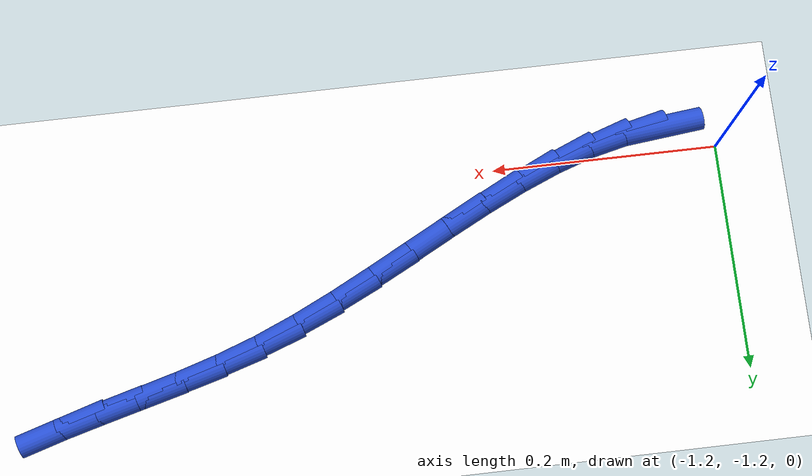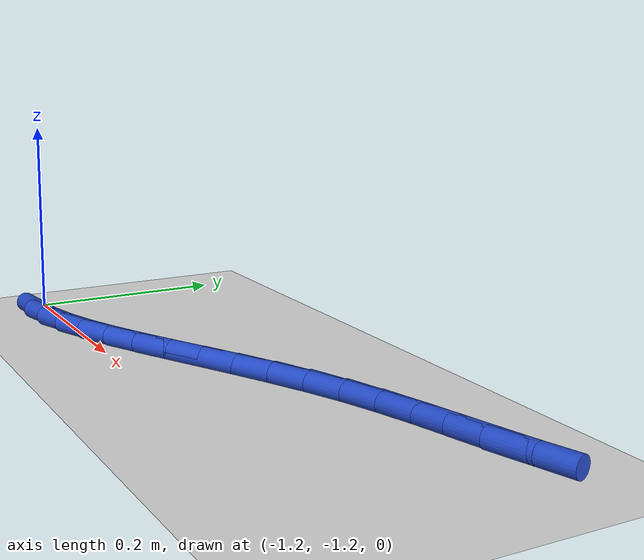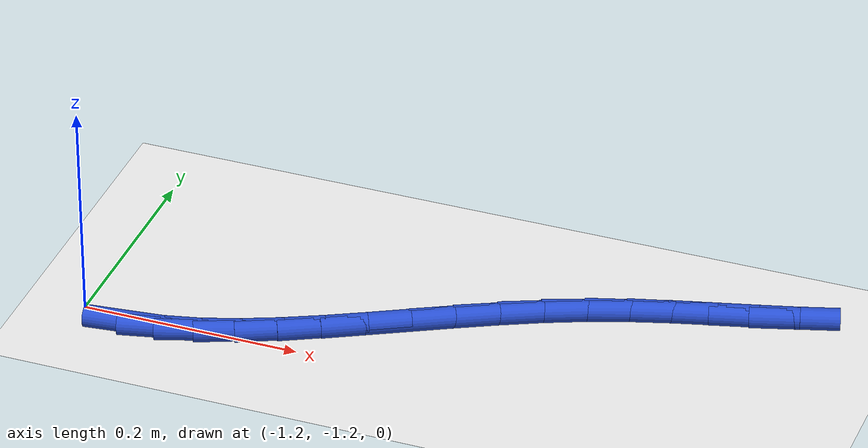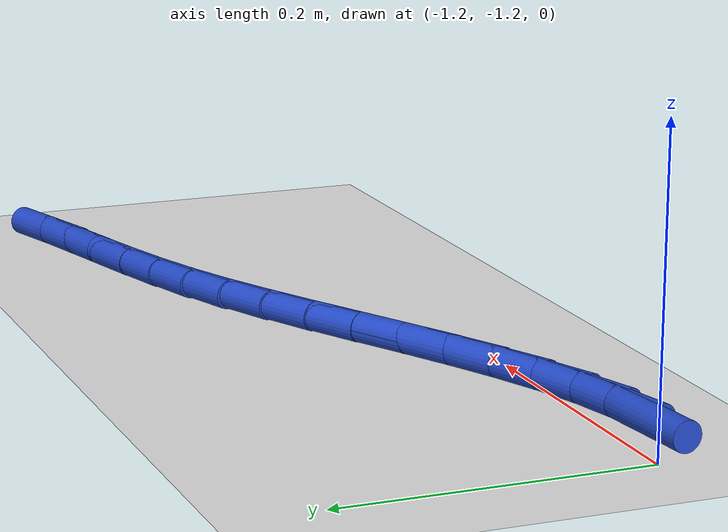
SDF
<sdf version="1.6">
 <world name="default">
  <model name="ground_plane">
   <static>1</static>
   <link name="link">
    <collision name="collision">
     <geometry><plane><normal>0 0 1</normal><size>100 100</size></plane></geometry>
     <surface><friction><ode><mu>100</mu><mu2>50</mu2></ode></friction></surface>
    </collision>
    <visual name="visual">
     <cast_shadows>0</cast_shadows>
     <geometry><plane><normal>0 0 1</normal><size>100 100</size></plane></geometry>
     <material>
      <script><uri>file://media/materials/scripts/gazebo.material</uri><name>Gazebo/WhiteGlow</name></script>
     </material>
    </visual>
   </link>
  </model>
  <model name="line">
   <link name="link_149">
    <pose>-1.1493687941139912 -1.2203137483968531 0.01 0 1.57 0.10786104663107009</pose>
    <collision name="collision">
     <geometry><cylinder><radius>0.01</radius><length>0.08</length></cylinder></geometry>
    </collision>
    <visual name="visual">
     <material>
      <script><name>Gazebo/Blue</name><uri>file://media/materials/scripts/gazebo.material</uri></script>
     </material>
     <geometry><cylinder><radius>0.01</radius><length>0.08</length></cylinder></geometry>
    </visual>
   </link>
   <link name="link_150">
    <pose>-1.1183673477435403 -1.216956871863096 0.01 0 1.57 0.23090353946557785</pose>
    <collision name="collision">
     <geometry><cylinder><radius>0.01</radius><length>0.08</length></cylinder></geometry>
    </collision>
    <visual name="visual">
     <material>
      <script><name>Gazebo/Blue</name><uri>file://media/materials/scripts/gazebo.material</uri></script>
     </material>
     <geometry><cylinder><radius>0.01</radius><length>0.08</length></cylinder></geometry>
    </visual>
   </link>
   <link name="link_151">
    <pose>-1.0866420552244123 -1.2094983622333522 0.01 0 1.57 0.324852312391499</pose>
    <collision name="collision">
     <geometry><cylinder><radius>0.01</radius><length>0.08</length></cylinder></geometry>
    </collision>
    <visual name="visual">
     <material>
      <script><name>Gazebo/Blue</name><uri>file://media/materials/scripts/gazebo.material</uri></script>
     </material>
     <geometry><cylinder><radius>0.01</radius><length>0.08</length></cylinder></geometry>
    </visual>
   </link>
   <link name="link_152">
    <pose>-1.054256611363853 -1.198591485281181 0.01 0 1.57 0.39374488359284954</pose>
    <collision name="collision">
     <geometry><cylinder><radius>0.01</radius><length>0.08</length></cylinder></geometry>
    </collision>
    <visual name="visual">
     <material>
      <script><name>Gazebo/Blue</name><uri>file://media/materials/scripts/gazebo.material</uri></script>
     </material>
     <geometry><cylinder><radius>0.01</radius><length>0.08</length></cylinder></geometry>
    </visual>
   </link>
   <link name="link_153">
    <pose>-1.021274710969107 -1.1848895067801426 0.01 0 1.57 0.4416050305662638</pose>
    <collision name="collision">
     <geometry><cylinder><radius>0.01</radius><length>0.08</length></cylinder></geometry>
    </collision>
    <visual name="visual">
     <material>
      <script><name>Gazebo/Blue</name><uri>file://media/materials/scripts/gazebo.material</uri></script>
     </material>
     <geometry><cylinder><radius>0.01</radius><length>0.08</length></cylinder></geometry>
    </visual>
   </link>
   <link name="link_154">
    <pose>-0.9877600488474191 -1.1690456925037964 0.01 0 1.57 0.4716315046972878</pose>
    <collision name="collision">
     <geometry><cylinder><radius>0.01</radius><length>0.08</length></cylinder></geometry>
    </collision>
    <visual name="visual">
     <material>
      <script><name>Gazebo/Blue</name><uri>file://media/materials/scripts/gazebo.material</uri></script>
     </material>
     <geometry><cylinder><radius>0.01</radius><length>0.08</length></cylinder></geometry>
    </visual>
   </link>
   <link name="link_155">
    <pose>-0.953776319806035 -1.151713308225702 0.01 0 1.57 0.4860287802735315</pose>
    <collision name="collision">
     <geometry><cylinder><radius>0.01</radius><length>0.08</length></cylinder></geometry>
    </collision>
    <visual name="visual">
     <material>
      <script><name>Gazebo/Blue</name><uri>file://media/materials/scripts/gazebo.material</uri></script>
     </material>
     <geometry><cylinder><radius>0.01</radius><length>0.08</length></cylinder></geometry>
    </visual>
   </link>
   <link name="link_156">
    <pose>-0.9193872186521992 -1.1335456197194196 0.01 0 1.57 0.4860632444115116</pose>
    <collision name="collision">
     <geometry><cylinder><radius>0.01</radius><length>0.08</length></cylinder></geometry>
    </collision>
    <visual name="visual">
     <material>
      <script><name>Gazebo/Blue</name><uri>file://media/materials/scripts/gazebo.material</uri></script>
     </material>
     <geometry><cylinder><radius>0.01</radius><length>0.08</length></cylinder></geometry>
    </visual>
   </link>
   <link name="link_157">
    <pose>-0.8846564401931569 -1.1151958927585082 0.01 0 1.57 0.4721601700957563</pose>
    <collision name="collision">
     <geometry><cylinder><radius>0.01</radius><length>0.08</length></cylinder></geometry>
    </collision>
    <visual name="visual">
     <material>
      <script><name>Gazebo/Blue</name><uri>file://media/materials/scripts/gazebo.material</uri></script>
     </material>
     <geometry><cylinder><radius>0.01</radius><length>0.08</length></cylinder></geometry>
    </visual>
   </link>
   <link name="link_158">
    <pose>-0.8496476792361533 -1.0973173931165277 0.01 0 1.57 0.44398232896027273</pose>
    <collision name="collision">
     <geometry><cylinder><radius>0.01</radius><length>0.08</length></cylinder></geometry>
    </collision>
    <visual name="visual">
     <material>
      <script><name>Gazebo/Blue</name><uri>file://media/materials/scripts/gazebo.material</uri></script>
     </material>
     <geometry><cylinder><radius>0.01</radius><length>0.08</length></cylinder></geometry>
    </visual>
   </link>
   <link name="link_159">
    <pose>-0.8144246305884338 -1.0805633865670388 0.01 0 1.57 0.4004918277338724</pose>
    <collision name="collision">
     <geometry><cylinder><radius>0.01</radius><length>0.08</length></cylinder></geometry>
    </collision>
    <visual name="visual">
     <material>
      <script><name>Gazebo/Blue</name><uri>file://media/materials/scripts/gazebo.material</uri></script>
     </material>
     <geometry><cylinder><radius>0.01</radius><length>0.08</length></cylinder></geometry>
    </visual>
   </link>
   <link name="link_160">
    <pose>-0.7790509890572428 -1.0655871388836002 0.01 0 1.57 0.3445160551321074</pose>
    <collision name="collision">
     <geometry><cylinder><radius>0.01</radius><length>0.08</length></cylinder></geometry>
    </collision>
    <visual name="visual">
     <material>
      <script><name>Gazebo/Blue</name><uri>file://media/materials/scripts/gazebo.material</uri></script>
     </material>
     <geometry><cylinder><radius>0.01</radius><length>0.08</length></cylinder></geometry>
    </visual>
   </link>
   <link name="link_161">
    <pose>-0.743608425037284 -1.0528694186404859 0.01 0 1.57 0.29790330185407415</pose>
    <collision name="collision">
     <geometry><cylinder><radius>0.01</radius><length>0.08</length></cylinder></geometry>
    </collision>
    <visual name="visual">
     <material>
      <script><name>Gazebo/Blue</name><uri>file://media/materials/scripts/gazebo.material</uri></script>
     </material>
     <geometry><cylinder><radius>0.01</radius><length>0.08</length></cylinder></geometry>
    </visual>
   </link>
   <link name="link_162">
    <pose>-0.7082694843887509 -1.0420189359428291 0.01 0 1.57 0.26876666241113273</pose>
    <collision name="collision">
     <geometry><cylinder><radius>0.01</radius><length>0.08</length></cylinder></geometry>
    </collision>
    <visual name="visual">
     <material>
      <script><name>Gazebo/Blue</name><uri>file://media/materials/scripts/gazebo.material</uri></script>
     </material>
     <geometry><cylinder><radius>0.01</radius><length>0.08</length></cylinder></geometry>
    </visual>
   </link>
   <link name="link_163">
    <pose>-0.6732353639374907 -1.0323694607112646 0.01 0 1.57 0.2580944628581029</pose>
    <collision name="collision">
     <geometry><cylinder><radius>0.01</radius><length>0.08</length></cylinder></geometry>
    </collision>
    <visual name="visual">
     <material>
      <script><name>Gazebo/Blue</name><uri>file://media/materials/scripts/gazebo.material</uri></script>
     </material>
     <geometry><cylinder><radius>0.01</radius><length>0.08</length></cylinder></geometry>
    </visual>
   </link>
   <link name="link_164">
    <pose>-0.6387072712974002 -1.02325465934224 0.01 0 1.57 0.26687365975544836</pose>
    <collision name="collision">
     <geometry><cylinder><radius>0.01</radius><length>0.08</length></cylinder></geometry>
    </collision>
    <visual name="visual">
     <material>
      <script><name>Gazebo/Blue</name><uri>file://media/materials/scripts/gazebo.material</uri></script>
     </material>
     <geometry><cylinder><radius>0.01</radius><length>0.08</length></cylinder></geometry>
    </visual>
   </link>
   <link name="link_165">
    <pose>-0.6048864140823744 -1.0140081982322025 0.01 0 1.57 0.2962090658733143</pose>
    <collision name="collision">
     <geometry><cylinder><radius>0.01</radius><length>0.08</length></cylinder></geometry>
    </collision>
    <visual name="visual">
     <material>
      <script><name>Gazebo/Blue</name><uri>file://media/materials/scripts/gazebo.material</uri></script>
     </material>
     <geometry><cylinder><radius>0.01</radius><length>0.08</length></cylinder></geometry>
    </visual>
   </link>
  </model>
 </world>
</sdf>
